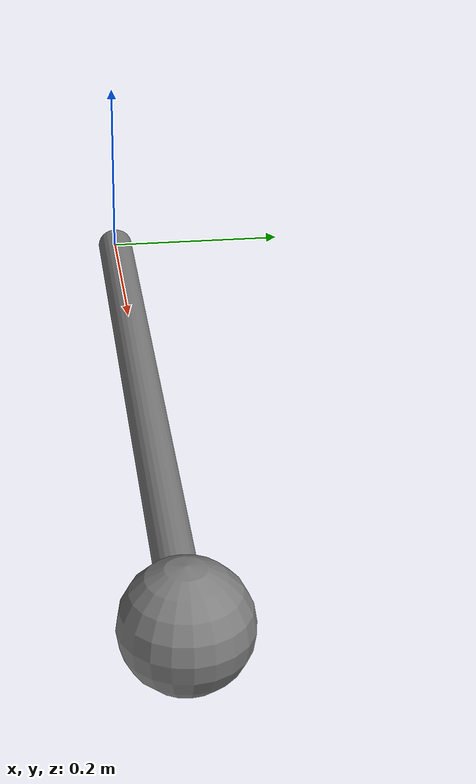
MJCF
<mujoco model="atlas_swing">
  <compiler angle="radian" coordinate="local" autolimits="true"/>
  <option gravity="0 0 -9.81" integrator="RK4" timestep="0.002"/>
  <default>
    <geom density="1000" friction="1 0.005 0.0001" condim="1"/>
    <joint damping="0.15" armature="0.01"/>
    <motor ctrllimited="true" ctrlrange="-30 30"/>
  </default>
  <worldbody>
    <light pos="0 0 3" directional="true"/>
    <body name="pend" pos="0 0 0">
      <joint name="shoulder" type="hinge" axis="0 0 1" limited="false"/>
      <geom name="rod" type="cylinder" fromto="0 0 0 0.8 0 0" size="0.02" mass="0.9"/>
      <geom name="tip" type="sphere" pos="0.8 0 0" size="0.06" mass="0.4"/>
    </body>
  </worldbody>
  <actuator>
    <motor name="drive" joint="shoulder" gear="0.07" ctrllimited="true" ctrlrange="-30 30"/>
  </actuator>
  <sensor>
    <jointpos joint="shoulder" name="angle"/>
  </sensor>
</mujoco>
